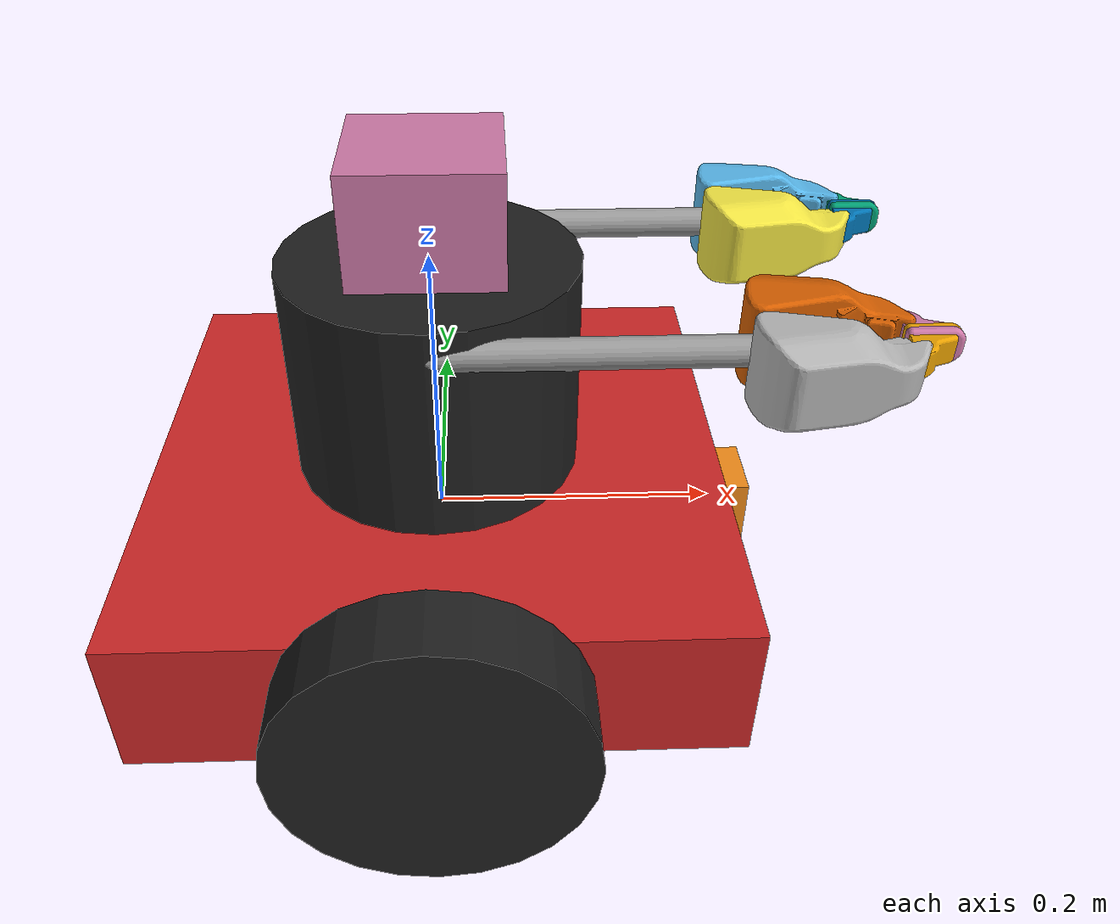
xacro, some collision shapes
<?xml version='1.0'?>

<robot name="udacity_bot" xmlns:xacro="http://www.ros.org/wiki/xacro">

  <xacro:property name="chassissize"       value=".4 .4 .1" />
  <xacro:property name="chassispose"       value="0 0 0.1 0 0 0" />
  <xacro:property name="chassisorigin"     value="0.0 0.0 0.0" />

  <xacro:property name="wheelradius"       value="0.1" />
  <xacro:property name="wheellength"       value="0.05" />
  <xacro:property name="leftwheelorigin"   value="0.0  0.0 0.0" />
  <xacro:property name="rightwheelorigin"  value="0.0  0.0 0.0" />
  <xacro:property name="leftwheelhinge"    value="0 0.23 0" />
  <xacro:property name="rightwheelhinge"   value="0 -0.23 0" />

  <xacro:property name="casterradius"      value="0.05" />
  <xacro:property name="frontcasterorigin" value="-0.15 0 -0.05" />
  <xacro:property name="backcasterorigin"  value=" 0.15 0 -0.05" />

  <xacro:property name="camerasize"        value="0.05 0.05 0.05" />
	<xacro:property name="cameraorigin"      value="0.0 0.0 0.0" />

	<xacro:property name="hokuyoorigin"      value="0.0 0.0 0.0" />

  <xacro:property name="torsolink"         value="0.0 0.0 0.1" />
  <xacro:property name="torsoradius"       value="0.1" />
  <xacro:property name="torsolength"       value="0.2" />
  <xacro:property name="torsoorigin"       value="0.0 0.0 0.0" />

  <xacro:property name="polelength"        value="0.2" />
  <xacro:property name="width"             value="0.15" />

  <xacro:include filename="$(find udacity_bot)/urdf/udacity_bot.gazebo" />

	<!-- Import Rviz colors -->
  <xacro:include filename="$(find udacity_bot)/urdf/materials.xacro" />

  <link name="robot_footprint"></link>

  <joint name="robot_footprint_joint" type="fixed">
    <origin xyz="0 0 0" rpy="0 0 0" />
    <parent link="robot_footprint"/>
    <child link="chassis" />
  </joint>

  <link name='chassis'>
    <pose>${chassispose}</pose>

    <inertial>
      <mass value="15.0"/>
      <origin xyz="0.0 0 0" rpy=" 0 0 0"/>
      <inertia
          ixx="0.1" ixy="0" ixz="0"
          iyy="0.1" iyz="0"
          izz="0.1"
      />
    </inertial>

    <collision name='collision'>
      <origin xyz="0 0 0" rpy=" 0 0 0"/>
      <geometry>
        <box size="${chassissize}"/>
      </geometry>
    </collision>

    <visual name='chassis_visual'>
      <origin xyz="0 0 0" rpy=" 0 0 0"/>
      <geometry>
        <box size="${chassissize}"/>
      </geometry>
      <material name="red"/>
   </visual>

    <collision name='back_caster_collision'>
      <origin xyz="${backcasterorigin}" rpy=" 0 0 0"/>
      <geometry>
        <sphere radius="${casterradius}"/>
      </geometry>
      <surface>
        <friction>
          <ode>
            <mu>0</mu>
            <mu2>0</mu2>
            <slip1>1.0</slip1>
            <slip2>1.0</slip2>
          </ode>
        </friction>
      </surface>
    </collision>

    <visual name='back_caster_visual'>
      <origin xyz="${backcasterorigin}" rpy=" 0 0 0"/>
      <geometry>
        <sphere radius="0.05"/>
      </geometry>
    </visual>

    <collision name='front_caster_collision'>
      <origin xyz="${frontcasterorigin}" rpy=" 0 0 0"/>
      <geometry>
        <sphere radius="${casterradius}"/>
      </geometry>
      <surface>
        <friction>
          <ode>
            <mu>0</mu>
            <mu2>0</mu2>
            <slip1>1.0</slip1>
            <slip2>1.0</slip2>
          </ode>
        </friction>
      </surface>
    </collision>

    <visual name='front_caster_visual'>
      <origin xyz="${frontcasterorigin}" rpy=" 0 0 0"/>
      <geometry>
        <sphere radius="${casterradius}"/>
      </geometry>
    </visual>

  </link>

	<link name="torso">
	 <collision name='torsocollision'>
      <origin xyz="${torsoorigin}" rpy=" 0 0 0"/>
      <geometry>
          <cylinder radius="${torsoradius}" length="${torsolength}"/>
      </geometry>
    </collision>
		 <inertial>
      <mass value="5.0"/>
      <origin xyz="${torsoorigin}" rpy=" 0 0 0"/>
      <inertia
          ixx="0.1" ixy="0" ixz="0"
          iyy="0.1" iyz="0"
          izz="0.1"
      />
    </inertial>
    <visual name='torso_visual'>
      <origin xyz="${torsoorigin}" rpy=" 0 0 0"/>
      <geometry>
          <cylinder radius="${torsoradius}" length="${torsolength}"/>
      </geometry>
      <material name="black"/>
   </visual>
	</link>

	<joint type="continuous" name="torsolink">
    <origin xyz="${torsolink}" rpy="0 0 0"/>
    <child link="torso"/>
    <parent link="chassis"/>
    <axis xyz="0 0 1" rpy="0 0 0"/>
    <limit effort="10000" velocity="1000"/>
    <joint_properties damping="1.0" friction="1.0"/>
  </joint>

  <link name="left_wheel">
    <collision name='left_wheel_collision'>
      <origin xyz="${leftwheelorigin}" rpy=" 0.0 1.5707 1.5707"/>
      <geometry>
        <cylinder radius="${wheelradius}" length="${wheellength}"/>
      </geometry>
      <surface>
        <friction>
          <ode>
            <mu>0</mu>
            <mu2>0</mu2>
            <slip1>1.0</slip1>
            <slip2>1.0</slip2>
          </ode>
        </friction>
      </surface>
    </collision>
    <inertial>
      <mass value="5.0"/>
      <origin xyz="${leftwheelorigin}" rpy=" 0 0 0"/>
      <inertia
          ixx="0.1" ixy="0" ixz="0"
          iyy="0.1" iyz="0"
          izz="0.1"
      />
    </inertial>
    <visual name='left_wheel_visual'>
     <origin xyz="${leftwheelorigin}" rpy=" 0.0 1.5707 1.5707"/>
      <geometry>
        <cylinder radius="${wheelradius}" length="${wheellength}"/>
      </geometry>
      <material name="black"/>
    </visual>
  </link>

  <joint type="continuous" name="left_wheel_hinge">
    <origin xyz="${leftwheelhinge}" rpy="0 0 0"/>
    <child link="left_wheel"/>
    <parent link="chassis"/>
    <axis xyz="0 1 0" rpy="0 0 0"/>
    <limit effort="10000" velocity="1000"/>
    <joint_properties damping="1.0" friction="1.0"/>
  </joint>

  <link name="right_wheel">
    <collision name='right_wheel_collision'>
      <origin xyz="${rightwheelorigin}" rpy=" 0.0 1.5707 1.5707"/>
      <geometry>
        <cylinder radius="${wheelradius}" length="${wheellength}"/>
      </geometry>
      <surface>
        <friction>
          <ode>
            <mu>0</mu>
            <mu2>0</mu2>
            <slip1>1.0</slip1>
            <slip2>1.0</slip2>
          </ode>
        </friction>
      </surface>
    </collision>
    <inertial>
      <mass value="5.0"/>
      <origin xyz="0.0 0.0 0.0" rpy=" 0.0 0.0 0.0"/>
      <inertia
          ixx="0.1" ixy="0" ixz="0"
          iyy="0.1" iyz="0"
          izz="0.1"
      />
    </inertial>
    <visual name='right_wheel_visual'>
      <origin xyz="${rightwheelorigin}" rpy=" 0.0 1.5707 1.5707"/>
      <geometry>
        <cylinder radius="${wheelradius}" length="${wheellength}"/>
      </geometry>
       <material name="black"/>
   </visual>
  </link>
  <joint type="continuous" name="right_wheel_hinge">
    <origin xyz="${rightwheelhinge}" rpy="0 0 0"/>
    <child link="right_wheel"/>
    <parent link="chassis"/>
    <axis xyz="0 1 0" rpy="0 0 0"/>
    <limit effort="10000" velocity="1000"/>
    <joint_properties damping="1.0" friction="1.0"/>
  </joint>

  <link name="camera">
    <collision name='camera_collision'>
      <origin xyz="${cameraorigin}" rpy=" 0.0 0.0 0.0"/>
      <geometry>
        <box size="${camerasize}"/>
      </geometry>
      <surface>
        <friction>
          <ode>
            <mu>0</mu>
            <mu2>0</mu2>
            <slip1>1.0</slip1>
            <slip2>1.0</slip2>
          </ode>
        </friction>
      </surface>
    </collision>
    <inertial>
      <mass value="0.1"/>
      <origin xyz="0.0 0.0 0.0" rpy=" 0.0 0.0 0.0"/>
      <inertia
          ixx="1e-6" ixy="0" ixz="0"
          iyy="1e-6" iyz="0"
          izz="1e-6"
      />
    </inertial>
    <visual name='camera_visual'>
      <origin xyz="${cameraorigin}" rpy=" 0.0 0.0 0.0"/>
      <geometry>
        <box size="${camerasize}"/>
      </geometry>
      <material name="orange"/>
    </visual>
  </link>

  <joint type="continuous" name="camera_joint">
    <origin xyz="0.2 0.0 0.0" rpy="0 0 0"/>
    <child link="camera"/>
    <parent link="chassis"/>
    <axis xyz="0 1 0" rpy="0 0 0"/>
    <limit effort="10000" velocity="1000"/>
    <joint_properties damping="1.0" friction="1.0"/>
  </joint>

  <link name="hokuyo">
    <collision name='hokuyo_collision'>
      <origin xyz="${hokuyoorigin}" rpy=" 0.0 0.0 0.0"/>
      <geometry>
        <box size="0.1 0.1 0.1"/>
      </geometry>
      <surface>
        <friction>
          <ode>
            <mu>0</mu>
            <mu2>0</mu2>
            <slip1>1.0</slip1>
            <slip2>1.0</slip2>
          </ode>
        </friction>
      </surface>
    </collision>
    <inertial>
      <mass value="0.1"/>
      <origin xyz="${hokuyoorigin}" rpy=" 0.0 0.0 0.0"/>
      <inertia
          ixx="1e-6" ixy="0" ixz="0"
          iyy="1e-6" iyz="0"
          izz="1e-6"
      />
    </inertial>
    <visual name='hokuyo_visual'>
      <origin xyz="${hokuyoorigin}" rpy=" 0.0 0.0 0.0"/>
      <geometry>
        <mesh filename="package://udacity_bot/meshes/hokuyo.dae"/>
      </geometry>
   </visual>
  </link>

  <joint type="continuous" name="hokuyo_joint">
    <origin xyz="0.0 0.0 0.225" rpy="0 0 0"/>
    <child link="hokuyo"/>
    <parent link="chassis"/>
    <axis xyz="0 1 0" rpy="0 0 0"/>
    <limit effort="10000" velocity="1000"/>
    <joint_properties damping="1.0" friction="1.0"/>
  </joint>

  <xacro:macro name="default_inertial" params="mass">
    <inertial>
      <mass value="${mass}" />
      <inertia ixx="1.0" ixy="0.0" ixz="0.0" iyy="1.0" iyz="0.0" izz="1.0" />
    </inertial>
  </xacro:macro>

	<!-- Gripper1 (left) -->

  <joint name="gripper_extension1" type="prismatic">
		<origin xyz="0.0 0.09 0.08" rpy="0 0 0"/>
    <parent link="torso"/>
    <child link="gripper_pole1"/>
    <limit effort="1000.0" lower="-${width*2-.02}" upper="0" velocity="0.5"/>
    <origin rpy="0 0 0" xyz="0 0 0.15"/>
    <limit effort="30" velocity="0.2"/>
    <dynamics damping="1.0" friction="1.0"/>
  </joint>

	<link name="gripper_pole1">
    <visual>
      <geometry>
        <cylinder length="${polelength}" radius="0.01"/>
      </geometry>
      <origin xyz="${polelength/2} 0 0" rpy="0 ${pi/2} 0 "/>
      <material name="grey"/>
    </visual>
    <collision>
      <geometry>
        <cylinder length="${polelength}" radius="0.01"/>
      </geometry>
      <origin xyz="${polelength/2} 0 0" rpy="0 0 0 "/>
    </collision>
    <xacro:default_inertial mass="0.05"/>
  </link>

  <xacro:macro name="gripper1" params="prefix reflect">
    <joint name="${prefix}_gripper_joint1" type="revolute">
      <axis xyz="0 0 ${reflect}"/>
      <limit effort="1000.0" lower="0.0" upper="0.548" velocity="0.5"/>
      <origin rpy="0 0 0" xyz="${polelength} ${reflect*0.01} 0"/>
      <parent link="gripper_pole1"/>
      <child link="${prefix}_gripper1"/>
      <limit effort="30" velocity="1.0"/>
      <dynamics damping="0.0" friction="0.0"/>
    </joint>

		<link name="${prefix}_gripper1">
      <visual>
        <origin rpy="${(reflect-1)/2*pi} 0 0" xyz="0 0 0"/>
        <geometry>
          <mesh filename="package://udacity_bot/meshes/l_finger.dae"/>
        </geometry>
      </visual>
      <collision>
        <geometry>
          <mesh filename="package://udacity_bot/meshes/l_finger.dae"/>
        </geometry>
        <origin rpy="${(reflect-1)/2*pi} 0 0" xyz="0 0 0"/>
      </collision>
      <xacro:default_inertial mass="0.05"/>
    </link>

    <joint name="${prefix}_tip_joint1" type="fixed">
      <parent link="${prefix}_gripper1"/>
      <child link="${prefix}_tip1"/>
    </joint>
    <link name="${prefix}_tip1">
      <visual>
        <origin rpy="${(reflect-1)/2*pi} 0 0" xyz="0.09137 0.00495 0"/>
        <geometry>
          <mesh filename="package://udacity_bot/meshes/l_finger_tip.dae"/>
        </geometry>
      </visual>
      <collision>
        <geometry>
          <mesh filename="package://udacity_bot/meshes/l_finger_tip.dae"/>
        </geometry>
        <origin rpy="${(reflect-1)/2*pi} 0 0" xyz="0.09137 0.00495 0"/>
      </collision>
      <xacro:default_inertial mass="0.05"/>
    </link>
  </xacro:macro>

<!-- Gripper2 (Right) -->

  <joint name="gripper_extension2" type="prismatic">
		<origin xyz="0.0 -0.09 0.08" rpy="0 0 0"/>
    <parent link="torso"/>
    <child link="gripper_pole2"/>
    <limit effort="1000.0" lower="-${width*2-.02}" upper="0" velocity="0.5"/>
    <origin rpy="0 0 0" xyz="0 0 0.15"/>
    <limit effort="30" velocity="0.2"/>
    <dynamics damping="1.0" friction="1.0"/>
  </joint>

	<link name="gripper_pole2">
    <visual>
      <geometry>
        <cylinder length="${polelength}" radius="0.01"/>
      </geometry>
      <origin xyz="${polelength/2} 0 0" rpy="0 ${pi/2} 0 "/>
      <material name="grey"/>
    </visual>
    <collision>
      <geometry>
        <cylinder length="${polelength}" radius="0.01"/>
      </geometry>
      <origin xyz="${polelength/2} 0 0" rpy="0 0 0 "/>
    </collision>
    <xacro:default_inertial mass="0.05"/>
  </link>

  <xacro:macro name="gripper2" params="prefix reflect">
    <joint name="${prefix}_gripper_joint2" type="revolute">
      <axis xyz="0 0 ${reflect}"/>
      <limit effort="1000.0" lower="0.0" upper="0.548" velocity="0.5"/>
      <origin rpy="0 0 0" xyz="${polelength} ${reflect*0.01} 0"/>
      <parent link="gripper_pole2"/>
      <child link="${prefix}_gripper2"/>
      <limit effort="30" velocity="1.0"/>
      <dynamics damping="0.0" friction="0.0"/>
    </joint>

		<link name="${prefix}_gripper2">
      <visual>
        <origin rpy="${(reflect-1)/2*pi} 0 0" xyz="0 0 0"/>
        <geometry>
          <mesh filename="package://udacity_bot/meshes/l_finger.dae"/>
        </geometry>
      </visual>
      <collision>
        <geometry>
          <mesh filename="package://udacity_bot/meshes/l_finger.dae"/>
        </geometry>
        <origin rpy="${(reflect-1)/2*pi} 0 0" xyz="0 0 0"/>
      </collision>
      <xacro:default_inertial mass="0.05"/>
    </link>

    <joint name="${prefix}_tip_joint2" type="fixed">
      <parent link="${prefix}_gripper2"/>
      <child link="${prefix}_tip2"/>
    </joint>
    <link name="${prefix}_tip2">
      <visual>
        <origin rpy="${(reflect-1)/2*pi} 0 0" xyz="0.09137 0.00495 0"/>
        <geometry>
          <mesh filename="package://udacity_bot/meshes/l_finger_tip.dae"/>
        </geometry>
      </visual>
      <collision>
        <geometry>
          <mesh filename="package://udacity_bot/meshes/l_finger_tip.dae"/>
        </geometry>
        <origin rpy="${(reflect-1)/2*pi} 0 0" xyz="0.09137 0.00495 0"/>
      </collision>
      <xacro:default_inertial mass="0.05"/>
    </link>
  </xacro:macro>

  <xacro:gripper1 prefix="left" reflect="1" />
  <xacro:gripper1 prefix="right" reflect="-1" />
	<xacro:gripper2 prefix="left" reflect="1" />
  <xacro:gripper2 prefix="right" reflect="-1" />

</robot>
